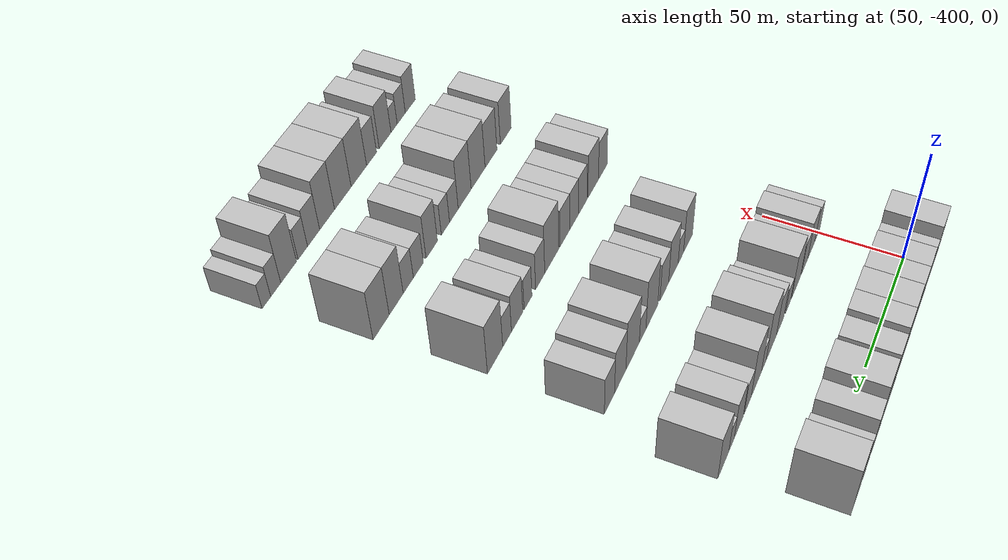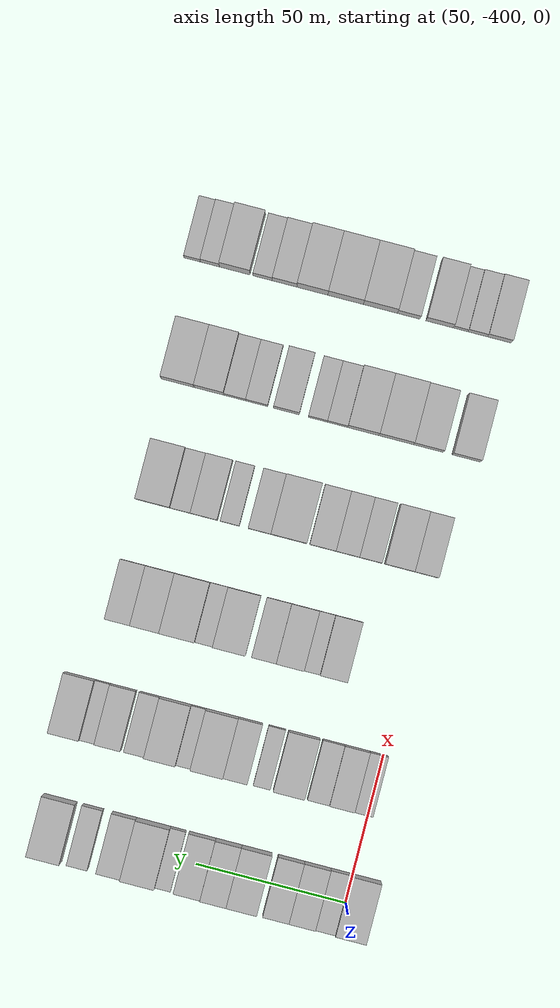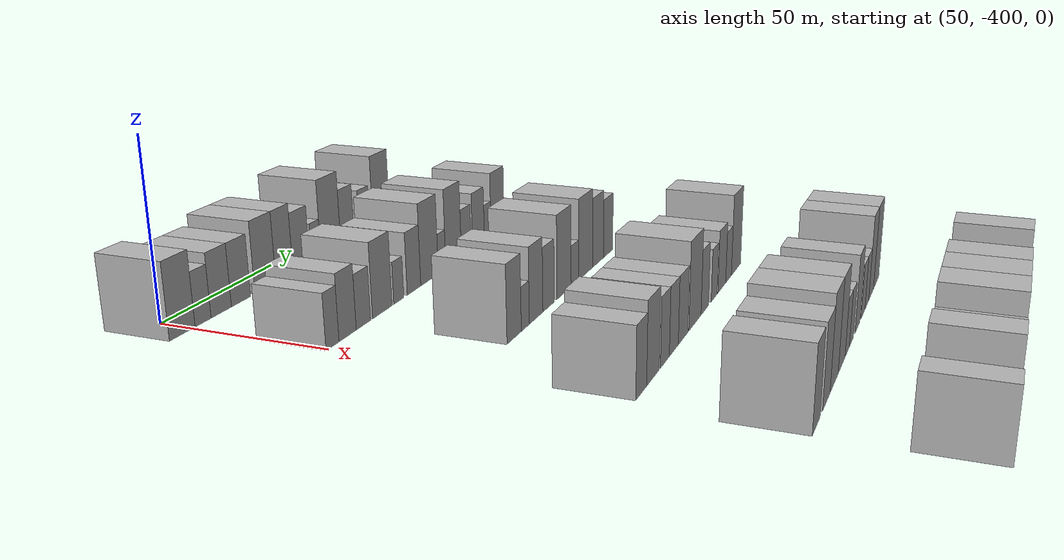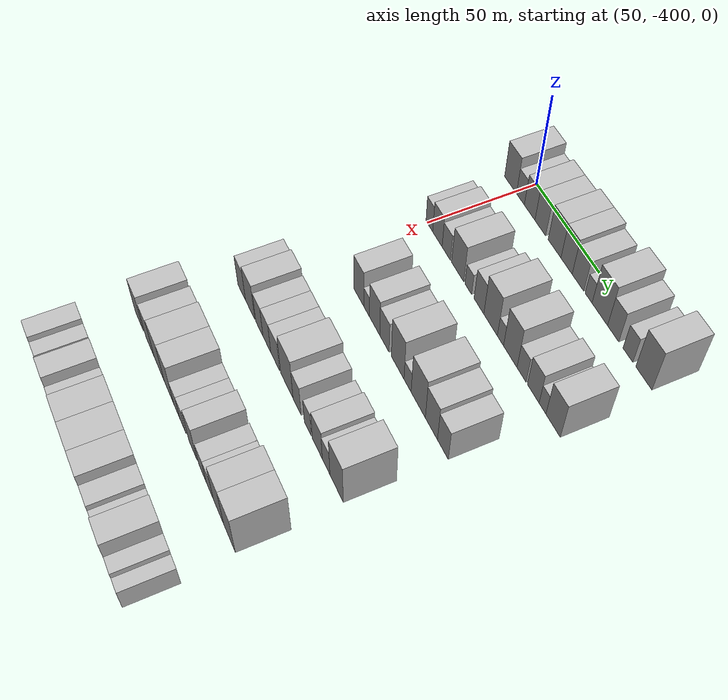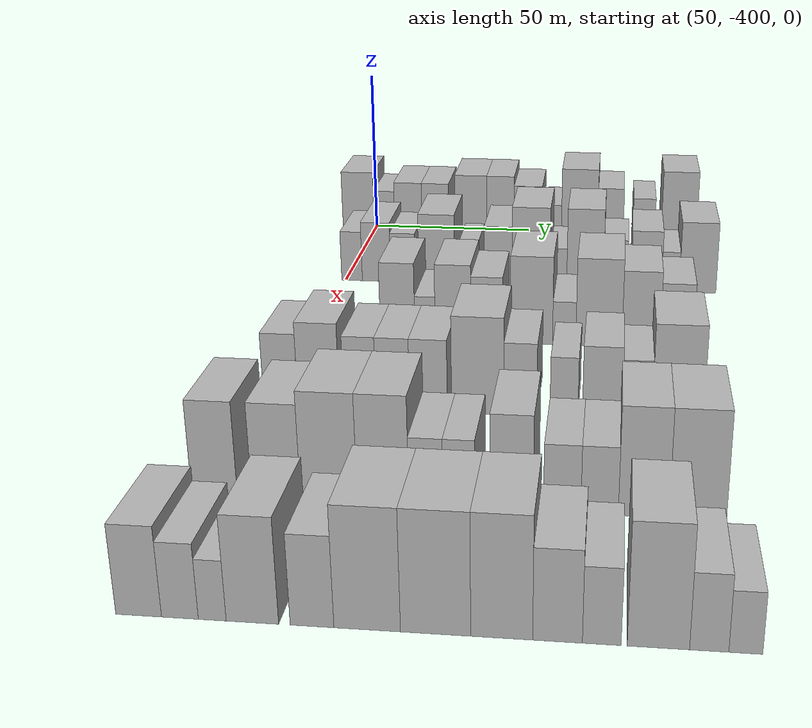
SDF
<sdf version="1.6">
 <world name="default">
  <model name="building_25">
   <static>1</static>
   <pose>50.0000 -404.1856 0 0.000000 0.000000 0.000000</pose>
   <link name="link">
    <pose>0 0 10.50 0 0 0</pose>
    <collision name="collision"><geometry><box><size>20.0000 10.2221 21.0000</size></box></geometry></collision>
    <visual name="visual">
     <cast_shadows>0</cast_shadows>
     <geometry><box><size>20.0000 10.2221 21.0000</size></box></geometry>
     <material>
      <script>
       <uri>model://HANNAS_wall/materials/scripts</uri>
       <uri>model://HANNAS_wall/materials/textures</uri>
       <name>vrc/HANNAS_wall</name>
      </script>
     </material>
    </visual>
   </link>
  </model>
  <model name="building_26">
   <static>1</static>
   <pose>50.0000 -395.7539 0 0.000000 0.000000 0.000000</pose>
   <link name="link">
    <pose>0 0 7.50 0 0 0</pose>
    <collision name="collision"><geometry><box><size>20.0000 6.6414 15.0000</size></box></geometry></collision>
    <visual name="visual">
     <cast_shadows>0</cast_shadows>
     <geometry><box><size>20.0000 6.6414 15.0000</size></box></geometry>
     <material>
      <script>
       <uri>model://HANNAS_wall/materials/scripts</uri>
       <uri>model://HANNAS_wall/materials/textures</uri>
       <name>vrc/HANNAS_wall</name>
      </script>
     </material>
    </visual>
   </link>
  </model>
  <model name="building_27">
   <static>1</static>
   <pose>50.0000 -388.0110 0 0.000000 0.000000 0.000000</pose>
   <link name="link">
    <pose>0 0 9.00 0 0 0</pose>
    <collision name="collision"><geometry><box><size>20.0000 8.8443 18.0000</size></box></geometry></collision>
    <visual name="visual">
     <cast_shadows>0</cast_shadows>
     <geometry><box><size>20.0000 8.8443 18.0000</size></box></geometry>
     <material>
      <script>
       <uri>model://HANNAS_wall/materials/scripts</uri>
       <uri>model://HANNAS_wall/materials/textures</uri>
       <name>vrc/HANNAS_wall</name>
      </script>
     </material>
    </visual>
   </link>
  </model>
  <model name="building_28">
   <static>1</static>
   <pose>50.0000 -379.2090 0 0.000000 0.000000 0.000000</pose>
   <link name="link">
    <pose>0 0 9.00 0 0 0</pose>
    <collision name="collision"><geometry><box><size>20.0000 8.7596 18.0000</size></box></geometry></collision>
    <visual name="visual">
     <cast_shadows>0</cast_shadows>
     <geometry><box><size>20.0000 8.7596 18.0000</size></box></geometry>
     <material>
      <script>
       <uri>model://HANNAS_wall/materials/scripts</uri>
       <uri>model://HANNAS_wall/materials/textures</uri>
       <name>vrc/HANNAS_wall</name>
      </script>
     </material>
    </visual>
   </link>
  </model>
  <model name="building_29">
   <static>1</static>
   <pose>50.0000 -367.7330 0 0.000000 0.000000 0.000000</pose>
   <link name="link">
    <pose>0 0 10.50 0 0 0</pose>
    <collision name="collision"><geometry><box><size>20.0000 10.1924 21.0000</size></box></geometry></collision>
    <visual name="visual">
     <cast_shadows>0</cast_shadows>
     <geometry><box><size>20.0000 10.1924 21.0000</size></box></geometry>
     <material>
      <script>
       <uri>model://HANNAS_wall/materials/scripts</uri>
       <uri>model://HANNAS_wall/materials/textures</uri>
       <name>vrc/HANNAS_wall</name>
      </script>
     </material>
    </visual>
   </link>
  </model>
  <model name="building_30">
   <static>1</static>
   <pose>50.0000 -358.2702 0 0.000000 0.000000 0.000000</pose>
   <link name="link">
    <pose>0 0 10.50 0 0 0</pose>
    <collision name="collision"><geometry><box><size>20.0000 8.7333 21.0000</size></box></geometry></collision>
    <visual name="visual">
     <cast_shadows>0</cast_shadows>
     <geometry><box><size>20.0000 8.7333 21.0000</size></box></geometry>
     <material>
      <script>
       <uri>model://HANNAS_wall/materials/scripts</uri>
       <uri>model://HANNAS_wall/materials/textures</uri>
       <name>vrc/HANNAS_wall</name>
      </script>
     </material>
    </visual>
   </link>
  </model>
  <model name="building_31">
   <static>1</static>
   <pose>50.0000 -349.4542 0 0.000000 0.000000 0.000000</pose>
   <link name="link">
    <pose>0 0 9.00 0 0 0</pose>
    <collision name="collision"><geometry><box><size>20.0000 8.8986 18.0000</size></box></geometry></collision>
    <visual name="visual">
     <cast_shadows>0</cast_shadows>
     <geometry><box><size>20.0000 8.8986 18.0000</size></box></geometry>
     <material>
      <script>
       <uri>model://HANNAS_wall/materials/scripts</uri>
       <uri>model://HANNAS_wall/materials/textures</uri>
       <name>vrc/HANNAS_wall</name>
      </script>
     </material>
    </visual>
   </link>
  </model>
  <model name="building_32">
   <static>1</static>
   <pose>50.0000 -341.4069 0 0.000000 0.000000 0.000000</pose>
   <link name="link">
    <pose>0 0 6.00 0 0 0</pose>
    <collision name="collision"><geometry><box><size>20.0000 5.1960 12.0000</size></box></geometry></collision>
    <visual name="visual">
     <cast_shadows>0</cast_shadows>
     <geometry><box><size>20.0000 5.1960 12.0000</size></box></geometry>
     <material>
      <script>
       <uri>model://HANNAS_wall/materials/scripts</uri>
       <uri>model://HANNAS_wall/materials/textures</uri>
       <name>vrc/HANNAS_wall</name>
      </script>
     </material>
    </visual>
   </link>
  </model>
  <model name="building_33">
   <static>1</static>
   <pose>50.0000 -333.0868 0 0.000000 0.000000 0.000000</pose>
   <link name="link">
    <pose>0 0 12.00 0 0 0</pose>
    <collision name="collision"><geometry><box><size>20.0000 11.4443 24.0000</size></box></geometry></collision>
    <visual name="visual">
     <cast_shadows>0</cast_shadows>
     <geometry><box><size>20.0000 11.4443 24.0000</size></box></geometry>
     <material>
      <script>
       <uri>model://HANNAS_wall/materials/scripts</uri>
       <uri>model://HANNAS_wall/materials/textures</uri>
       <name>vrc/HANNAS_wall</name>
      </script>
     </material>
    </visual>
   </link>
  </model>
  <model name="building_34">
   <static>1</static>
   <pose>50.0000 -323.3204 0 0.000000 0.000000 0.000000</pose>
   <link name="link">
    <pose>0 0 9.00 0 0 0</pose>
    <collision name="collision"><geometry><box><size>20.0000 8.0884 18.0000</size></box></geometry></collision>
    <visual name="visual">
     <cast_shadows>0</cast_shadows>
     <geometry><box><size>20.0000 8.0884 18.0000</size></box></geometry>
     <material>
      <script>
       <uri>model://HANNAS_wall/materials/scripts</uri>
       <uri>model://HANNAS_wall/materials/textures</uri>
       <name>vrc/HANNAS_wall</name>
      </script>
     </material>
    </visual>
   </link>
  </model>
  <model name="building_35">
   <static>1</static>
   <pose>50.0000 -312.8151 0 0.000000 0.000000 0.000000</pose>
   <link name="link">
    <pose>0 0 7.50 0 0 0</pose>
    <collision name="collision"><geometry><box><size>20.0000 6.9221 15.0000</size></box></geometry></collision>
    <visual name="visual">
     <cast_shadows>0</cast_shadows>
     <geometry><box><size>20.0000 6.9221 15.0000</size></box></geometry>
     <material>
      <script>
       <uri>model://HANNAS_wall/materials/scripts</uri>
       <uri>model://HANNAS_wall/materials/textures</uri>
       <name>vrc/HANNAS_wall</name>
      </script>
     </material>
    </visual>
   </link>
  </model>
  <model name="building_36">
   <static>1</static>
   <pose>50.0000 -301.8305 0 0.000000 0.000000 0.000000</pose>
   <link name="link">
    <pose>0 0 12.00 0 0 0</pose>
    <collision name="collision"><geometry><box><size>20.0000 11.0471 24.0000</size></box></geometry></collision>
    <visual name="visual">
     <cast_shadows>0</cast_shadows>
     <geometry><box><size>20.0000 11.0471 24.0000</size></box></geometry>
     <material>
      <script>
       <uri>model://HANNAS_wall/materials/scripts</uri>
       <uri>model://HANNAS_wall/materials/textures</uri>
       <name>vrc/HANNAS_wall</name>
      </script>
     </material>
    </visual>
   </link>
  </model>
  <model name="building_164">
   <static>1</static>
   <pose>90.0000 -398.1459 0 0.000000 0.000000 0.000000</pose>
   <link name="link">
    <pose>0 0 7.50 0 0 0</pose>
    <collision name="collision"><geometry><box><size>20.0000 6.1091 15.0000</size></box></geometry></collision>
    <visual name="visual">
     <cast_shadows>0</cast_shadows>
     <geometry><box><size>20.0000 6.1091 15.0000</size></box></geometry>
     <material>
      <script>
       <uri>model://HANNAS_wall/materials/scripts</uri>
       <uri>model://HANNAS_wall/materials/textures</uri>
       <name>vrc/HANNAS_wall</name>
      </script>
     </material>
    </visual>
   </link>
  </model>
  <model name="building_165">
   <static>1</static>
   <pose>90.0000 -390.8864 0 0.000000 0.000000 0.000000</pose>
   <link name="link">
    <pose>0 0 9.00 0 0 0</pose>
    <collision name="collision"><geometry><box><size>20.0000 8.4098 18.0000</size></box></geometry></collision>
    <visual name="visual">
     <cast_shadows>0</cast_shadows>
     <geometry><box><size>20.0000 8.4098 18.0000</size></box></geometry>
     <material>
      <script>
       <uri>model://HANNAS_wall/materials/scripts</uri>
       <uri>model://HANNAS_wall/materials/textures</uri>
       <name>vrc/HANNAS_wall</name>
      </script>
     </material>
    </visual>
   </link>
  </model>
  <model name="building_166">
   <static>1</static>
   <pose>90.0000 -383.0242 0 0.000000 0.000000 0.000000</pose>
   <link name="link">
    <pose>0 0 7.50 0 0 0</pose>
    <collision name="collision"><geometry><box><size>20.0000 7.3146 15.0000</size></box></geometry></collision>
    <visual name="visual">
     <cast_shadows>0</cast_shadows>
     <geometry><box><size>20.0000 7.3146 15.0000</size></box></geometry>
     <material>
      <script>
       <uri>model://HANNAS_wall/materials/scripts</uri>
       <uri>model://HANNAS_wall/materials/textures</uri>
       <name>vrc/HANNAS_wall</name>
      </script>
     </material>
    </visual>
   </link>
  </model>
  <model name="building_167">
   <static>1</static>
   <pose>90.0000 -373.1331 0 0.000000 0.000000 0.000000</pose>
   <link name="link">
    <pose>0 0 10.50 0 0 0</pose>
    <collision name="collision"><geometry><box><size>20.0000 10.4677 21.0000</size></box></geometry></collision>
    <visual name="visual">
     <cast_shadows>0</cast_shadows>
     <geometry><box><size>20.0000 10.4677 21.0000</size></box></geometry>
     <material>
      <script>
       <uri>model://HANNAS_wall/materials/scripts</uri>
       <uri>model://HANNAS_wall/materials/textures</uri>
       <name>vrc/HANNAS_wall</name>
      </script>
     </material>
    </visual>
   </link>
  </model>
  <model name="building_168">
   <static>1</static>
   <pose>90.0000 -364.0689 0 0.000000 0.000000 0.000000</pose>
   <link name="link">
    <pose>0 0 6.00 0 0 0</pose>
    <collision name="collision"><geometry><box><size>20.0000 5.6606 12.0000</size></box></geometry></collision>
    <visual name="visual">
     <cast_shadows>0</cast_shadows>
     <geometry><box><size>20.0000 5.6606 12.0000</size></box></geometry>
     <material>
      <script>
       <uri>model://HANNAS_wall/materials/scripts</uri>
       <uri>model://HANNAS_wall/materials/textures</uri>
       <name>vrc/HANNAS_wall</name>
      </script>
     </material>
    </visual>
   </link>
  </model>
  <model name="building_169">
   <static>1</static>
   <pose>90.0000 -355.2098 0 0.000000 0.000000 0.000000</pose>
   <link name="link">
    <pose>0 0 9.00 0 0 0</pose>
    <collision name="collision"><geometry><box><size>20.0000 8.0577 18.0000</size></box></geometry></collision>
    <visual name="visual">
     <cast_shadows>0</cast_shadows>
     <geometry><box><size>20.0000 8.0577 18.0000</size></box></geometry>
     <material>
      <script>
       <uri>model://HANNAS_wall/materials/scripts</uri>
       <uri>model://HANNAS_wall/materials/textures</uri>
       <name>vrc/HANNAS_wall</name>
      </script>
     </material>
    </visual>
   </link>
  </model>
  <model name="building_170">
   <static>1</static>
   <pose>90.0000 -345.7206 0 0.000000 0.000000 0.000000</pose>
   <link name="link">
    <pose>0 0 12.00 0 0 0</pose>
    <collision name="collision"><geometry><box><size>20.0000 10.9205 24.0000</size></box></geometry></collision>
    <visual name="visual">
     <cast_shadows>0</cast_shadows>
     <geometry><box><size>20.0000 10.9205 24.0000</size></box></geometry>
     <material>
      <script>
       <uri>model://HANNAS_wall/materials/scripts</uri>
       <uri>model://HANNAS_wall/materials/textures</uri>
       <name>vrc/HANNAS_wall</name>
      </script>
     </material>
    </visual>
   </link>
  </model>
  <model name="building_171">
   <static>1</static>
   <pose>90.0000 -337.8138 0 0.000000 0.000000 0.000000</pose>
   <link name="link">
    <pose>0 0 6.00 0 0 0</pose>
    <collision name="collision"><geometry><box><size>20.0000 4.8931 12.0000</size></box></geometry></collision>
    <visual name="visual">
     <cast_shadows>0</cast_shadows>
     <geometry><box><size>20.0000 4.8931 12.0000</size></box></geometry>
     <material>
      <script>
       <uri>model://HANNAS_wall/materials/scripts</uri>
       <uri>model://HANNAS_wall/materials/textures</uri>
       <name>vrc/HANNAS_wall</name>
      </script>
     </material>
    </visual>
   </link>
  </model>
  <model name="building_172">
   <static>1</static>
   <pose>90.0000 -330.1203 0 0.000000 0.000000 0.000000</pose>
   <link name="link">
    <pose>0 0 12.00 0 0 0</pose>
    <collision name="collision"><geometry><box><size>20.0000 10.4939 24.0000</size></box></geometry></collision>
    <visual name="visual">
     <cast_shadows>0</cast_shadows>
     <geometry><box><size>20.0000 10.4939 24.0000</size></box></geometry>
     <material>
      <script>
       <uri>model://HANNAS_wall/materials/scripts</uri>
       <uri>model://HANNAS_wall/materials/textures</uri>
       <name>vrc/HANNAS_wall</name>
      </script>
     </material>
    </visual>
   </link>
  </model>
  <model name="building_173">
   <static>1</static>
   <pose>90.0000 -321.4285 0 0.000000 0.000000 0.000000</pose>
   <link name="link">
    <pose>0 0 7.50 0 0 0</pose>
    <collision name="collision"><geometry><box><size>20.0000 6.8897 15.0000</size></box></geometry></collision>
    <visual name="visual">
     <cast_shadows>0</cast_shadows>
     <geometry><box><size>20.0000 6.8897 15.0000</size></box></geometry>
     <material>
      <script>
       <uri>model://HANNAS_wall/materials/scripts</uri>
       <uri>model://HANNAS_wall/materials/textures</uri>
       <name>vrc/HANNAS_wall</name>
      </script>
     </material>
    </visual>
   </link>
  </model>
  <model name="building_174">
   <static>1</static>
   <pose>90.0000 -312.6215 0 0.000000 0.000000 0.000000</pose>
   <link name="link">
    <pose>0 0 9.00 0 0 0</pose>
    <collision name="collision"><geometry><box><size>20.0000 8.7244 18.0000</size></box></geometry></collision>
    <visual name="visual">
     <cast_shadows>0</cast_shadows>
     <geometry><box><size>20.0000 8.7244 18.0000</size></box></geometry>
     <material>
      <script>
       <uri>model://HANNAS_wall/materials/scripts</uri>
       <uri>model://HANNAS_wall/materials/textures</uri>
       <name>vrc/HANNAS_wall</name>
      </script>
     </material>
    </visual>
   </link>
  </model>
  <model name="building_175">
   <static>1</static>
   <pose>90.0000 -305.7350 0 0.000000 0.000000 0.000000</pose>
   <link name="link">
    <pose>0 0 6.00 0 0 0</pose>
    <collision name="collision"><geometry><box><size>20.0000 5.0487 12.0000</size></box></geometry></collision>
    <visual name="visual">
     <cast_shadows>0</cast_shadows>
     <geometry><box><size>20.0000 5.0487 12.0000</size></box></geometry>
     <material>
      <script>
       <uri>model://HANNAS_wall/materials/scripts</uri>
       <uri>model://HANNAS_wall/materials/textures</uri>
       <name>vrc/HANNAS_wall</name>
      </script>
     </material>
    </visual>
   </link>
  </model>
  <model name="building_176">
   <static>1</static>
   <pose>90.0000 -298.0472 0 0.000000 0.000000 0.000000</pose>
   <link name="link">
    <pose>0 0 10.50 0 0 0</pose>
    <collision name="collision"><geometry><box><size>20.0000 10.3268 21.0000</size></box></geometry></collision>
    <visual name="visual">
     <cast_shadows>0</cast_shadows>
     <geometry><box><size>20.0000 10.3268 21.0000</size></box></geometry>
     <material>
      <script>
       <uri>model://HANNAS_wall/materials/scripts</uri>
       <uri>model://HANNAS_wall/materials/textures</uri>
       <name>vrc/HANNAS_wall</name>
      </script>
     </material>
    </visual>
   </link>
  </model>
  <model name="building_307">
   <static>1</static>
   <pose>130.0000 -377.6761 0 0.000000 0.000000 0.000000</pose>
   <link name="link">
    <pose>0 0 10.50 0 0 0</pose>
    <collision name="collision"><geometry><box><size>20.0000 9.0865 21.0000</size></box></geometry></collision>
    <visual name="visual">
     <cast_shadows>0</cast_shadows>
     <geometry><box><size>20.0000 9.0865 21.0000</size></box></geometry>
     <material>
      <script>
       <uri>model://HANNAS_wall/materials/scripts</uri>
       <uri>model://HANNAS_wall/materials/textures</uri>
       <name>vrc/HANNAS_wall</name>
      </script>
     </material>
    </visual>
   </link>
  </model>
  <model name="building_308">
   <static>1</static>
   <pose>130.0000 -370.4656 0 0.000000 0.000000 0.000000</pose>
   <link name="link">
    <pose>0 0 6.00 0 0 0</pose>
    <collision name="collision"><geometry><box><size>20.0000 5.3345 12.0000</size></box></geometry></collision>
    <visual name="visual">
     <cast_shadows>0</cast_shadows>
     <geometry><box><size>20.0000 5.3345 12.0000</size></box></geometry>
     <material>
      <script>
       <uri>model://HANNAS_wall/materials/scripts</uri>
       <uri>model://HANNAS_wall/materials/textures</uri>
       <name>vrc/HANNAS_wall</name>
      </script>
     </material>
    </visual>
   </link>
  </model>
  <model name="building_309">
   <static>1</static>
   <pose>130.0000 -363.1376 0 0.000000 0.000000 0.000000</pose>
   <link name="link">
    <pose>0 0 10.50 0 0 0</pose>
    <collision name="collision"><geometry><box><size>20.0000 9.3214 21.0000</size></box></geometry></collision>
    <visual name="visual">
     <cast_shadows>0</cast_shadows>
     <geometry><box><size>20.0000 9.3214 21.0000</size></box></geometry>
     <material>
      <script>
       <uri>model://HANNAS_wall/materials/scripts</uri>
       <uri>model://HANNAS_wall/materials/textures</uri>
       <name>vrc/HANNAS_wall</name>
      </script>
     </material>
    </visual>
   </link>
  </model>
  <model name="building_310">
   <static>1</static>
   <pose>130.0000 -354.3574 0 0.000000 0.000000 0.000000</pose>
   <link name="link">
    <pose>0 0 9.00 0 0 0</pose>
    <collision name="collision"><geometry><box><size>20.0000 8.2391 18.0000</size></box></geometry></collision>
    <visual name="visual">
     <cast_shadows>0</cast_shadows>
     <geometry><box><size>20.0000 8.2391 18.0000</size></box></geometry>
     <material>
      <script>
       <uri>model://HANNAS_wall/materials/scripts</uri>
       <uri>model://HANNAS_wall/materials/textures</uri>
       <name>vrc/HANNAS_wall</name>
      </script>
     </material>
    </visual>
   </link>
  </model>
  <model name="building_311">
   <static>1</static>
   <pose>130.0000 -342.7614 0 0.000000 0.000000 0.000000</pose>
   <link name="link">
    <pose>0 0 12.00 0 0 0</pose>
    <collision name="collision"><geometry><box><size>20.0000 10.9528 24.0000</size></box></geometry></collision>
    <visual name="visual">
     <cast_shadows>0</cast_shadows>
     <geometry><box><size>20.0000 10.9528 24.0000</size></box></geometry>
     <material>
      <script>
       <uri>model://HANNAS_wall/materials/scripts</uri>
       <uri>model://HANNAS_wall/materials/textures</uri>
       <name>vrc/HANNAS_wall</name>
      </script>
     </material>
    </visual>
   </link>
  </model>
  <model name="building_312">
   <static>1</static>
   <pose>130.0000 -334.2888 0 0.000000 0.000000 0.000000</pose>
   <link name="link">
    <pose>0 0 6.00 0 0 0</pose>
    <collision name="collision"><geometry><box><size>20.0000 5.9923 12.0000</size></box></geometry></collision>
    <visual name="visual">
     <cast_shadows>0</cast_shadows>
     <geometry><box><size>20.0000 5.9923 12.0000</size></box></geometry>
     <material>
      <script>
       <uri>model://HANNAS_wall/materials/scripts</uri>
       <uri>model://HANNAS_wall/materials/textures</uri>
       <name>vrc/HANNAS_wall</name>
      </script>
     </material>
    </visual>
   </link>
  </model>
  <model name="building_313">
   <static>1</static>
   <pose>130.0000 -325.3943 0 0.000000 0.000000 0.000000</pose>
   <link name="link">
    <pose>0 0 12.00 0 0 0</pose>
    <collision name="collision"><geometry><box><size>20.0000 11.7966 24.0000</size></box></geometry></collision>
    <visual name="visual">
     <cast_shadows>0</cast_shadows>
     <geometry><box><size>20.0000 11.7966 24.0000</size></box></geometry>
     <material>
      <script>
       <uri>model://HANNAS_wall/materials/scripts</uri>
       <uri>model://HANNAS_wall/materials/textures</uri>
       <name>vrc/HANNAS_wall</name>
      </script>
     </material>
    </visual>
   </link>
  </model>
  <model name="building_314">
   <static>1</static>
   <pose>130.0000 -314.6332 0 0.000000 0.000000 0.000000</pose>
   <link name="link">
    <pose>0 0 10.50 0 0 0</pose>
    <collision name="collision"><geometry><box><size>20.0000 9.7257 21.0000</size></box></geometry></collision>
    <visual name="visual">
     <cast_shadows>0</cast_shadows>
     <geometry><box><size>20.0000 9.7257 21.0000</size></box></geometry>
     <material>
      <script>
       <uri>model://HANNAS_wall/materials/scripts</uri>
       <uri>model://HANNAS_wall/materials/textures</uri>
       <name>vrc/HANNAS_wall</name>
      </script>
     </material>
    </visual>
   </link>
  </model>
  <model name="building_315">
   <static>1</static>
   <pose>130.0000 -305.5154 0 0.000000 0.000000 0.000000</pose>
   <link name="link">
    <pose>0 0 9.00 0 0 0</pose>
    <collision name="collision"><geometry><box><size>20.0000 8.5099 18.0000</size></box></geometry></collision>
    <visual name="visual">
     <cast_shadows>0</cast_shadows>
     <geometry><box><size>20.0000 8.5099 18.0000</size></box></geometry>
     <material>
      <script>
       <uri>model://HANNAS_wall/materials/scripts</uri>
       <uri>model://HANNAS_wall/materials/textures</uri>
       <name>vrc/HANNAS_wall</name>
      </script>
     </material>
    </visual>
   </link>
  </model>
  <model name="building_441">
   <static>1</static>
   <pose>170.0000 -398.2286 0 0.000000 0.000000 0.000000</pose>
   <link name="link">
    <pose>0 0 9.00 0 0 0</pose>
    <collision name="collision"><geometry><box><size>20.0000 8.1094 18.0000</size></box></geometry></collision>
    <visual name="visual">
     <cast_shadows>0</cast_shadows>
     <geometry><box><size>20.0000 8.1094 18.0000</size></box></geometry>
     <material>
      <script>
       <uri>model://HANNAS_wall/materials/scripts</uri>
       <uri>model://HANNAS_wall/materials/textures</uri>
       <name>vrc/HANNAS_wall</name>
      </script>
     </material>
    </visual>
   </link>
  </model>
  <model name="building_442">
   <static>1</static>
   <pose>170.0000 -389.2709 0 0.000000 0.000000 0.000000</pose>
   <link name="link">
    <pose>0 0 10.50 0 0 0</pose>
    <collision name="collision"><geometry><box><size>20.0000 9.8060 21.0000</size></box></geometry></collision>
    <visual name="visual">
     <cast_shadows>0</cast_shadows>
     <geometry><box><size>20.0000 9.8060 21.0000</size></box></geometry>
     <material>
      <script>
       <uri>model://HANNAS_wall/materials/scripts</uri>
       <uri>model://HANNAS_wall/materials/textures</uri>
       <name>vrc/HANNAS_wall</name>
      </script>
     </material>
    </visual>
   </link>
  </model>
  <model name="building_443">
   <static>1</static>
   <pose>170.0000 -379.6039 0 0.000000 0.000000 0.000000</pose>
   <link name="link">
    <pose>0 0 9.00 0 0 0</pose>
    <collision name="collision"><geometry><box><size>20.0000 7.5280 18.0000</size></box></geometry></collision>
    <visual name="visual">
     <cast_shadows>0</cast_shadows>
     <geometry><box><size>20.0000 7.5280 18.0000</size></box></geometry>
     <material>
      <script>
       <uri>model://HANNAS_wall/materials/scripts</uri>
       <uri>model://HANNAS_wall/materials/textures</uri>
       <name>vrc/HANNAS_wall</name>
      </script>
     </material>
    </visual>
   </link>
  </model>
  <model name="building_444">
   <static>1</static>
   <pose>170.0000 -371.9123 0 0.000000 0.000000 0.000000</pose>
   <link name="link">
    <pose>0 0 9.00 0 0 0</pose>
    <collision name="collision"><geometry><box><size>20.0000 7.8552 18.0000</size></box></geometry></collision>
    <visual name="visual">
     <cast_shadows>0</cast_shadows>
     <geometry><box><size>20.0000 7.8552 18.0000</size></box></geometry>
     <material>
      <script>
       <uri>model://HANNAS_wall/materials/scripts</uri>
       <uri>model://HANNAS_wall/materials/textures</uri>
       <name>vrc/HANNAS_wall</name>
      </script>
     </material>
    </visual>
   </link>
  </model>
  <model name="building_445">
   <static>1</static>
   <pose>170.0000 -363.6168 0 0.000000 0.000000 0.000000</pose>
   <link name="link">
    <pose>0 0 9.00 0 0 0</pose>
    <collision name="collision"><geometry><box><size>20.0000 8.7357 18.0000</size></box></geometry></collision>
    <visual name="visual">
     <cast_shadows>0</cast_shadows>
     <geometry><box><size>20.0000 8.7357 18.0000</size></box></geometry>
     <material>
      <script>
       <uri>model://HANNAS_wall/materials/scripts</uri>
       <uri>model://HANNAS_wall/materials/textures</uri>
       <name>vrc/HANNAS_wall</name>
      </script>
     </material>
    </visual>
   </link>
  </model>
  <model name="building_446">
   <static>1</static>
   <pose>170.0000 -352.2631 0 0.000000 0.000000 0.000000</pose>
   <link name="link">
    <pose>0 0 12.00 0 0 0</pose>
    <collision name="collision"><geometry><box><size>20.0000 11.9719 24.0000</size></box></geometry></collision>
    <visual name="visual">
     <cast_shadows>0</cast_shadows>
     <geometry><box><size>20.0000 11.9719 24.0000</size></box></geometry>
     <material>
      <script>
       <uri>model://HANNAS_wall/materials/scripts</uri>
       <uri>model://HANNAS_wall/materials/textures</uri>
       <name>vrc/HANNAS_wall</name>
      </script>
     </material>
    </visual>
   </link>
  </model>
  <model name="building_447">
   <static>1</static>
   <pose>170.0000 -342.4910 0 0.000000 0.000000 0.000000</pose>
   <link name="link">
    <pose>0 0 9.00 0 0 0</pose>
    <collision name="collision"><geometry><box><size>20.0000 7.5723 18.0000</size></box></geometry></collision>
    <visual name="visual">
     <cast_shadows>0</cast_shadows>
     <geometry><box><size>20.0000 7.5723 18.0000</size></box></geometry>
     <material>
      <script>
       <uri>model://HANNAS_wall/materials/scripts</uri>
       <uri>model://HANNAS_wall/materials/textures</uri>
       <name>vrc/HANNAS_wall</name>
      </script>
     </material>
    </visual>
   </link>
  </model>
  <model name="building_448">
   <static>1</static>
   <pose>170.0000 -332.5288 0 0.000000 0.000000 0.000000</pose>
   <link name="link">
    <pose>0 0 7.50 0 0 0</pose>
    <collision name="collision"><geometry><box><size>20.0000 6.3521 15.0000</size></box></geometry></collision>
    <visual name="visual">
     <cast_shadows>0</cast_shadows>
     <geometry><box><size>20.0000 6.3521 15.0000</size></box></geometry>
     <material>
      <script>
       <uri>model://HANNAS_wall/materials/scripts</uri>
       <uri>model://HANNAS_wall/materials/textures</uri>
       <name>vrc/HANNAS_wall</name>
      </script>
     </material>
    </visual>
   </link>
  </model>
  <model name="building_449">
   <static>1</static>
   <pose>170.0000 -323.8726 0 0.000000 0.000000 0.000000</pose>
   <link name="link">
    <pose>0 0 9.00 0 0 0</pose>
    <collision name="collision"><geometry><box><size>20.0000 8.9603 18.0000</size></box></geometry></collision>
    <visual name="visual">
     <cast_shadows>0</cast_shadows>
     <geometry><box><size>20.0000 8.9603 18.0000</size></box></geometry>
     <material>
      <script>
       <uri>model://HANNAS_wall/materials/scripts</uri>
       <uri>model://HANNAS_wall/materials/textures</uri>
       <name>vrc/HANNAS_wall</name>
      </script>
     </material>
    </visual>
   </link>
  </model>
  <model name="building_450">
   <static>1</static>
   <pose>170.0000 -316.0181 0 0.000000 0.000000 0.000000</pose>
   <link name="link">
    <pose>0 0 7.50 0 0 0</pose>
    <collision name="collision"><geometry><box><size>20.0000 6.7488 15.0000</size></box></geometry></collision>
    <visual name="visual">
     <cast_shadows>0</cast_shadows>
     <geometry><box><size>20.0000 6.7488 15.0000</size></box></geometry>
     <material>
      <script>
       <uri>model://HANNAS_wall/materials/scripts</uri>
       <uri>model://HANNAS_wall/materials/textures</uri>
       <name>vrc/HANNAS_wall</name>
      </script>
     </material>
    </visual>
   </link>
  </model>
  <model name="building_451">
   <static>1</static>
   <pose>170.0000 -306.8853 0 0.000000 0.000000 0.000000</pose>
   <link name="link">
    <pose>0 0 12.00 0 0 0</pose>
    <collision name="collision"><geometry><box><size>20.0000 11.5168 24.0000</size></box></geometry></collision>
    <visual name="visual">
     <cast_shadows>0</cast_shadows>
     <geometry><box><size>20.0000 11.5168 24.0000</size></box></geometry>
     <material>
      <script>
       <uri>model://HANNAS_wall/materials/scripts</uri>
       <uri>model://HANNAS_wall/materials/textures</uri>
       <name>vrc/HANNAS_wall</name>
      </script>
     </material>
    </visual>
   </link>
  </model>
  <model name="building_580">
   <static>1</static>
   <pose>210.0000 -401.4169 0 0.000000 0.000000 0.000000</pose>
   <link name="link">
    <pose>0 0 10.50 0 0 0</pose>
    <collision name="collision"><geometry><box><size>20.0000 9.4943 21.0000</size></box></geometry></collision>
    <visual name="visual">
     <cast_shadows>0</cast_shadows>
     <geometry><box><size>20.0000 9.4943 21.0000</size></box></geometry>
     <material>
      <script>
       <uri>model://HANNAS_wall/materials/scripts</uri>
       <uri>model://HANNAS_wall/materials/textures</uri>
       <name>vrc/HANNAS_wall</name>
      </script>
     </material>
    </visual>
   </link>
  </model>
  <model name="building_581">
   <static>1</static>
   <pose>210.0000 -388.6523 0 0.000000 0.000000 0.000000</pose>
   <link name="link">
    <pose>0 0 10.50 0 0 0</pose>
    <collision name="collision"><geometry><box><size>20.0000 10.0347 21.0000</size></box></geometry></collision>
    <visual name="visual">
     <cast_shadows>0</cast_shadows>
     <geometry><box><size>20.0000 10.0347 21.0000</size></box></geometry>
     <material>
      <script>
       <uri>model://HANNAS_wall/materials/scripts</uri>
       <uri>model://HANNAS_wall/materials/textures</uri>
       <name>vrc/HANNAS_wall</name>
      </script>
     </material>
    </visual>
   </link>
  </model>
  <model name="building_582">
   <static>1</static>
   <pose>210.0000 -377.8547 0 0.000000 0.000000 0.000000</pose>
   <link name="link">
    <pose>0 0 12.00 0 0 0</pose>
    <collision name="collision"><geometry><box><size>20.0000 11.5606 24.0000</size></box></geometry></collision>
    <visual name="visual">
     <cast_shadows>0</cast_shadows>
     <geometry><box><size>20.0000 11.5606 24.0000</size></box></geometry>
     <material>
      <script>
       <uri>model://HANNAS_wall/materials/scripts</uri>
       <uri>model://HANNAS_wall/materials/textures</uri>
       <name>vrc/HANNAS_wall</name>
      </script>
     </material>
    </visual>
   </link>
  </model>
  <model name="building_583">
   <static>1</static>
   <pose>210.0000 -366.8402 0 0.000000 0.000000 0.000000</pose>
   <link name="link">
    <pose>0 0 12.00 0 0 0</pose>
    <collision name="collision"><geometry><box><size>20.0000 10.4685 24.0000</size></box></geometry></collision>
    <visual name="visual">
     <cast_shadows>0</cast_shadows>
     <geometry><box><size>20.0000 10.4685 24.0000</size></box></geometry>
     <material>
      <script>
       <uri>model://HANNAS_wall/materials/scripts</uri>
       <uri>model://HANNAS_wall/materials/textures</uri>
       <name>vrc/HANNAS_wall</name>
      </script>
     </material>
    </visual>
   </link>
  </model>
  <model name="building_584">
   <static>1</static>
   <pose>210.0000 -358.1813 0 0.000000 0.000000 0.000000</pose>
   <link name="link">
    <pose>0 0 7.50 0 0 0</pose>
    <collision name="collision"><geometry><box><size>20.0000 6.8492 15.0000</size></box></geometry></collision>
    <visual name="visual">
     <cast_shadows>0</cast_shadows>
     <geometry><box><size>20.0000 6.8492 15.0000</size></box></geometry>
     <material>
      <script>
       <uri>model://HANNAS_wall/materials/scripts</uri>
       <uri>model://HANNAS_wall/materials/textures</uri>
       <name>vrc/HANNAS_wall</name>
      </script>
     </material>
    </visual>
   </link>
  </model>
  <model name="building_585">
   <static>1</static>
   <pose>210.0000 -351.5697 0 0.000000 0.000000 0.000000</pose>
   <link name="link">
    <pose>0 0 7.50 0 0 0</pose>
    <collision name="collision"><geometry><box><size>20.0000 6.3740 15.0000</size></box></geometry></collision>
    <visual name="visual">
     <cast_shadows>0</cast_shadows>
     <geometry><box><size>20.0000 6.3740 15.0000</size></box></geometry>
     <material>
      <script>
       <uri>model://HANNAS_wall/materials/scripts</uri>
       <uri>model://HANNAS_wall/materials/textures</uri>
       <name>vrc/HANNAS_wall</name>
      </script>
     </material>
    </visual>
   </link>
  </model>
  <model name="building_586">
   <static>1</static>
   <pose>210.0000 -341.0753 0 0.000000 0.000000 0.000000</pose>
   <link name="link">
    <pose>0 0 10.50 0 0 0</pose>
    <collision name="collision"><geometry><box><size>20.0000 8.6149 21.0000</size></box></geometry></collision>
    <visual name="visual">
     <cast_shadows>0</cast_shadows>
     <geometry><box><size>20.0000 8.6149 21.0000</size></box></geometry>
     <material>
      <script>
       <uri>model://HANNAS_wall/materials/scripts</uri>
       <uri>model://HANNAS_wall/materials/textures</uri>
       <name>vrc/HANNAS_wall</name>
      </script>
     </material>
    </visual>
   </link>
  </model>
  <model name="building_587">
   <static>1</static>
   <pose>210.0000 -331.0773 0 0.000000 0.000000 0.000000</pose>
   <link name="link">
    <pose>0 0 7.50 0 0 0</pose>
    <collision name="collision"><geometry><box><size>20.0000 7.3810 15.0000</size></box></geometry></collision>
    <visual name="visual">
     <cast_shadows>0</cast_shadows>
     <geometry><box><size>20.0000 7.3810 15.0000</size></box></geometry>
     <material>
      <script>
       <uri>model://HANNAS_wall/materials/scripts</uri>
       <uri>model://HANNAS_wall/materials/textures</uri>
       <name>vrc/HANNAS_wall</name>
      </script>
     </material>
    </visual>
   </link>
  </model>
  <model name="building_588">
   <static>1</static>
   <pose>210.0000 -323.7188 0 0.000000 0.000000 0.000000</pose>
   <link name="link">
    <pose>0 0 7.50 0 0 0</pose>
    <collision name="collision"><geometry><box><size>20.0000 7.3359 15.0000</size></box></geometry></collision>
    <visual name="visual">
     <cast_shadows>0</cast_shadows>
     <geometry><box><size>20.0000 7.3359 15.0000</size></box></geometry>
     <material>
      <script>
       <uri>model://HANNAS_wall/materials/scripts</uri>
       <uri>model://HANNAS_wall/materials/textures</uri>
       <name>vrc/HANNAS_wall</name>
      </script>
     </material>
    </visual>
   </link>
  </model>
  <model name="building_589">
   <static>1</static>
   <pose>210.0000 -315.1005 0 0.000000 0.000000 0.000000</pose>
   <link name="link">
    <pose>0 0 12.00 0 0 0</pose>
    <collision name="collision"><geometry><box><size>20.0000 9.9009 24.0000</size></box></geometry></collision>
    <visual name="visual">
     <cast_shadows>0</cast_shadows>
     <geometry><box><size>20.0000 9.9009 24.0000</size></box></geometry>
     <material>
      <script>
       <uri>model://HANNAS_wall/materials/scripts</uri>
       <uri>model://HANNAS_wall/materials/textures</uri>
       <name>vrc/HANNAS_wall</name>
      </script>
     </material>
    </visual>
   </link>
  </model>
  <model name="building_590">
   <static>1</static>
   <pose>210.0000 -304.6000 0 0.000000 0.000000 0.000000</pose>
   <link name="link">
    <pose>0 0 12.00 0 0 0</pose>
    <collision name="collision"><geometry><box><size>20.0000 11.1000 24.0000</size></box></geometry></collision>
    <visual name="visual">
     <cast_shadows>0</cast_shadows>
     <geometry><box><size>20.0000 11.1000 24.0000</size></box></geometry>
     <material>
      <script>
       <uri>model://HANNAS_wall/materials/scripts</uri>
       <uri>model://HANNAS_wall/materials/textures</uri>
       <name>vrc/HANNAS_wall</name>
      </script>
     </material>
    </visual>
   </link>
  </model>
  <model name="building_714">
   <static>1</static>
   <pose>250.0000 -402.1266 0 0.000000 0.000000 0.000000</pose>
   <link name="link">
    <pose>0 0 9.00 0 0 0</pose>
    <collision name="collision"><geometry><box><size>20.0000 8.1128 18.0000</size></box></geometry></collision>
    <visual name="visual">
     <cast_shadows>0</cast_shadows>
     <geometry><box><size>20.0000 8.1128 18.0000</size></box></geometry>
     <material>
      <script>
       <uri>model://HANNAS_wall/materials/scripts</uri>
       <uri>model://HANNAS_wall/materials/textures</uri>
       <name>vrc/HANNAS_wall</name>
      </script>
     </material>
    </visual>
   </link>
  </model>
  <model name="building_715">
   <static>1</static>
   <pose>250.0000 -394.8150 0 0.000000 0.000000 0.000000</pose>
   <link name="link">
    <pose>0 0 7.50 0 0 0</pose>
    <collision name="collision"><geometry><box><size>20.0000 6.5104 15.0000</size></box></geometry></collision>
    <visual name="visual">
     <cast_shadows>0</cast_shadows>
     <geometry><box><size>20.0000 6.5104 15.0000</size></box></geometry>
     <material>
      <script>
       <uri>model://HANNAS_wall/materials/scripts</uri>
       <uri>model://HANNAS_wall/materials/textures</uri>
       <name>vrc/HANNAS_wall</name>
      </script>
     </material>
    </visual>
   </link>
  </model>
  <model name="building_716">
   <static>1</static>
   <pose>250.0000 -389.1125 0 0.000000 0.000000 0.000000</pose>
   <link name="link">
    <pose>0 0 6.00 0 0 0</pose>
    <collision name="collision"><geometry><box><size>20.0000 4.8946 12.0000</size></box></geometry></collision>
    <visual name="visual">
     <cast_shadows>0</cast_shadows>
     <geometry><box><size>20.0000 4.8946 12.0000</size></box></geometry>
     <material>
      <script>
       <uri>model://HANNAS_wall/materials/scripts</uri>
       <uri>model://HANNAS_wall/materials/textures</uri>
       <name>vrc/HANNAS_wall</name>
      </script>
     </material>
    </visual>
   </link>
  </model>
  <model name="building_717">
   <static>1</static>
   <pose>250.0000 -382.0792 0 0.000000 0.000000 0.000000</pose>
   <link name="link">
    <pose>0 0 10.50 0 0 0</pose>
    <collision name="collision"><geometry><box><size>20.0000 9.1721 21.0000</size></box></geometry></collision>
    <visual name="visual">
     <cast_shadows>0</cast_shadows>
     <geometry><box><size>20.0000 9.1721 21.0000</size></box></geometry>
     <material>
      <script>
       <uri>model://HANNAS_wall/materials/scripts</uri>
       <uri>model://HANNAS_wall/materials/textures</uri>
       <name>vrc/HANNAS_wall</name>
      </script>
     </material>
    </visual>
   </link>
  </model>
  <model name="building_718">
   <static>1</static>
   <pose>250.0000 -371.7079 0 0.000000 0.000000 0.000000</pose>
   <link name="link">
    <pose>0 0 9.00 0 0 0</pose>
    <collision name="collision"><geometry><box><size>20.0000 7.5704 18.0000</size></box></geometry></collision>
    <visual name="visual">
     <cast_shadows>0</cast_shadows>
     <geometry><box><size>20.0000 7.5704 18.0000</size></box></geometry>
     <material>
      <script>
       <uri>model://HANNAS_wall/materials/scripts</uri>
       <uri>model://HANNAS_wall/materials/textures</uri>
       <name>vrc/HANNAS_wall</name>
      </script>
     </material>
    </visual>
   </link>
  </model>
  <model name="building_719">
   <static>1</static>
   <pose>250.0000 -362.2073 0 0.000000 0.000000 0.000000</pose>
   <link name="link">
    <pose>0 0 12.00 0 0 0</pose>
    <collision name="collision"><geometry><box><size>20.0000 11.4307 24.0000</size></box></geometry></collision>
    <visual name="visual">
     <cast_shadows>0</cast_shadows>
     <geometry><box><size>20.0000 11.4307 24.0000</size></box></geometry>
     <material>
      <script>
       <uri>model://HANNAS_wall/materials/scripts</uri>
       <uri>model://HANNAS_wall/materials/textures</uri>
       <name>vrc/HANNAS_wall</name>
      </script>
     </material>
    </visual>
   </link>
  </model>
  <model name="building_720">
   <static>1</static>
   <pose>250.0000 -350.5203 0 0.000000 0.000000 0.000000</pose>
   <link name="link">
    <pose>0 0 12.00 0 0 0</pose>
    <collision name="collision"><geometry><box><size>20.0000 11.9434 24.0000</size></box></geometry></collision>
    <visual name="visual">
     <cast_shadows>0</cast_shadows>
     <geometry><box><size>20.0000 11.9434 24.0000</size></box></geometry>
     <material>
      <script>
       <uri>model://HANNAS_wall/materials/scripts</uri>
       <uri>model://HANNAS_wall/materials/textures</uri>
       <name>vrc/HANNAS_wall</name>
      </script>
     </material>
    </visual>
   </link>
  </model>
  <model name="building_721">
   <static>1</static>
   <pose>250.0000 -339.3411 0 0.000000 0.000000 0.000000</pose>
   <link name="link">
    <pose>0 0 12.00 0 0 0</pose>
    <collision name="collision"><geometry><box><size>20.0000 10.4149 24.0000</size></box></geometry></collision>
    <visual name="visual">
     <cast_shadows>0</cast_shadows>
     <geometry><box><size>20.0000 10.4149 24.0000</size></box></geometry>
     <material>
      <script>
       <uri>model://HANNAS_wall/materials/scripts</uri>
       <uri>model://HANNAS_wall/materials/textures</uri>
       <name>vrc/HANNAS_wall</name>
      </script>
     </material>
    </visual>
   </link>
  </model>
  <model name="building_722">
   <static>1</static>
   <pose>250.0000 -329.9834 0 0.000000 0.000000 0.000000</pose>
   <link name="link">
    <pose>0 0 9.00 0 0 0</pose>
    <collision name="collision"><geometry><box><size>20.0000 8.3005 18.0000</size></box></geometry></collision>
    <visual name="visual">
     <cast_shadows>0</cast_shadows>
     <geometry><box><size>20.0000 8.3005 18.0000</size></box></geometry>
     <material>
      <script>
       <uri>model://HANNAS_wall/materials/scripts</uri>
       <uri>model://HANNAS_wall/materials/textures</uri>
       <name>vrc/HANNAS_wall</name>
      </script>
     </material>
    </visual>
   </link>
  </model>
  <model name="building_723">
   <static>1</static>
   <pose>250.0000 -322.6207 0 0.000000 0.000000 0.000000</pose>
   <link name="link">
    <pose>0 0 7.50 0 0 0</pose>
    <collision name="collision"><geometry><box><size>20.0000 6.4250 15.0000</size></box></geometry></collision>
    <visual name="visual">
     <cast_shadows>0</cast_shadows>
     <geometry><box><size>20.0000 6.4250 15.0000</size></box></geometry>
     <material>
      <script>
       <uri>model://HANNAS_wall/materials/scripts</uri>
       <uri>model://HANNAS_wall/materials/textures</uri>
       <name>vrc/HANNAS_wall</name>
      </script>
     </material>
    </visual>
   </link>
  </model>
  <model name="building_724">
   <static>1</static>
   <pose>250.0000 -313.2774 0 0.000000 0.000000 0.000000</pose>
   <link name="link">
    <pose>0 0 12.00 0 0 0</pose>
    <collision name="collision"><geometry><box><size>20.0000 10.2616 24.0000</size></box></geometry></collision>
    <visual name="visual">
     <cast_shadows>0</cast_shadows>
     <geometry><box><size>20.0000 10.2616 24.0000</size></box></geometry>
     <material>
      <script>
       <uri>model://HANNAS_wall/materials/scripts</uri>
       <uri>model://HANNAS_wall/materials/textures</uri>
       <name>vrc/HANNAS_wall</name>
      </script>
     </material>
    </visual>
   </link>
  </model>
  <model name="building_725">
   <static>1</static>
   <pose>250.0000 -304.9412 0 0.000000 0.000000 0.000000</pose>
   <link name="link">
    <pose>0 0 7.50 0 0 0</pose>
    <collision name="collision"><geometry><box><size>20.0000 6.4107 15.0000</size></box></geometry></collision>
    <visual name="visual">
     <cast_shadows>0</cast_shadows>
     <geometry><box><size>20.0000 6.4107 15.0000</size></box></geometry>
     <material>
      <script>
       <uri>model://HANNAS_wall/materials/scripts</uri>
       <uri>model://HANNAS_wall/materials/textures</uri>
       <name>vrc/HANNAS_wall</name>
      </script>
     </material>
    </visual>
   </link>
  </model>
  <model name="building_726">
   <static>1</static>
   <pose>250.0000 -298.9785 0 0.000000 0.000000 0.000000</pose>
   <link name="link">
    <pose>0 0 6.00 0 0 0</pose>
    <collision name="collision"><geometry><box><size>20.0000 5.5148 12.0000</size></box></geometry></collision>
    <visual name="visual">
     <cast_shadows>0</cast_shadows>
     <geometry><box><size>20.0000 5.5148 12.0000</size></box></geometry>
     <material>
      <script>
       <uri>model://HANNAS_wall/materials/scripts</uri>
       <uri>model://HANNAS_wall/materials/textures</uri>
       <name>vrc/HANNAS_wall</name>
      </script>
     </material>
    </visual>
   </link>
  </model>
 </world>
</sdf>
